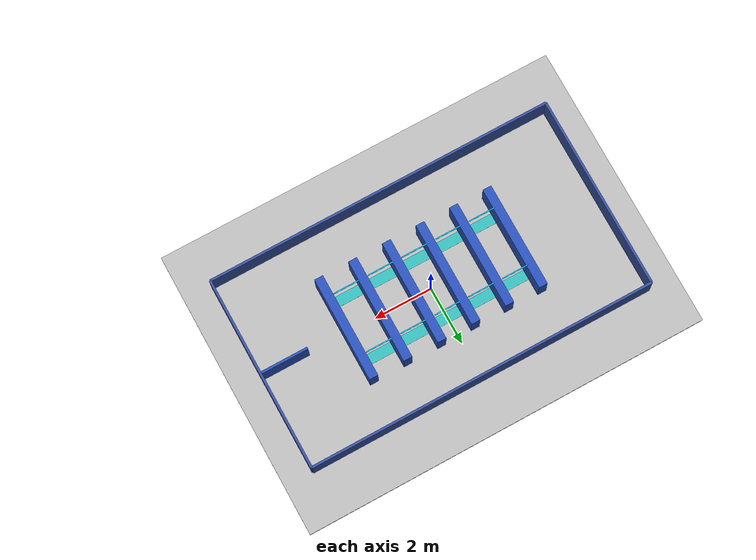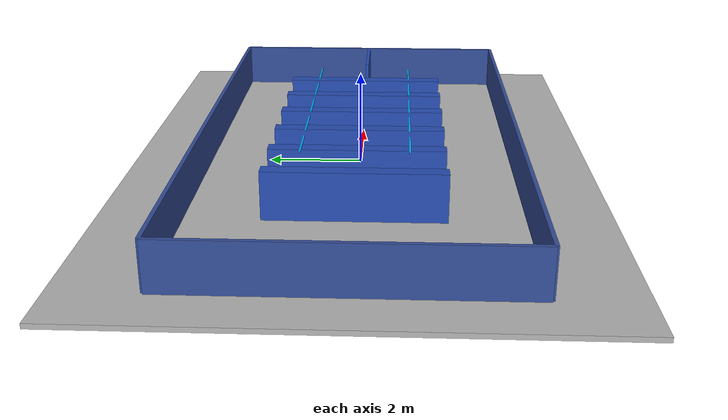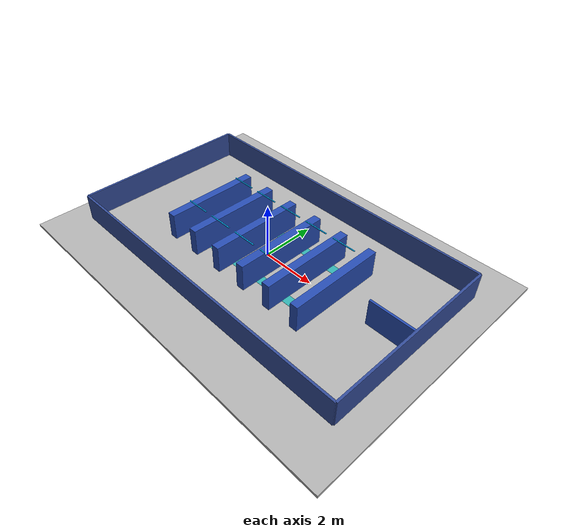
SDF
<?xml version='1.0' encoding='utf-8'?>
<sdf version="1.6"><world name="default"><physics name="default_physics" type="ode"><max_step_size>0.002</max_step_size><real_time_update_rate>500</real_time_update_rate><ode><solver><type>quick</type><iters>100</iters><sor>1.0</sor></solver></ode></physics><scene><shadows>false</shadows><ambient>.65 .65 .65 1</ambient></scene><light name="sun" type="directional"><pose>0 0 10 0 0 0</pose><diffuse>.8 .8 .8 1</diffuse><direction>-.3 -.2 -1</direction><cast_shadows>false</cast_shadows></light><model name="floor"><static>true</static><pose>0 0 -0.05 0 0 0</pose><link name="body"><visual name="visual"><geometry><box><size>14 10 0.1</size></box></geometry><material><ambient>.7 .7 .7 1</ambient><diffuse>.7 .7 .7 1</diffuse></material><cast_shadows>false</cast_shadows></visual><collision name="collision"><geometry><box><size>14 10 0.1</size></box></geometry></collision></link></model><model name="channel_wall_0"><static>true</static><pose>-3 0 0.5 0 0 0</pose><link name="body"><visual name="visual"><geometry><box><size>0.3 3.6 1</size></box></geometry><material><ambient>.15 .3 .7 1</ambient><diffuse>.15 .3 .7 1</diffuse></material><cast_shadows>false</cast_shadows></visual><collision name="collision"><geometry><box><size>0.3 3.6 1</size></box></geometry></collision></link></model><model name="channel_wall_1"><static>true</static><pose>-1.8 0 0.5 0 0 0</pose><link name="body"><visual name="visual"><geometry><box><size>0.3 3.6 1</size></box></geometry><material><ambient>.15 .3 .7 1</ambient><diffuse>.15 .3 .7 1</diffuse></material><cast_shadows>false</cast_shadows></visual><collision name="collision"><geometry><box><size>0.3 3.6 1</size></box></geometry></collision></link></model><model name="channel_wall_2"><static>true</static><pose>-0.6 0 0.5 0 0 0</pose><link name="body"><visual name="visual"><geometry><box><size>0.3 3.6 1</size></box></geometry><material><ambient>.15 .3 .7 1</ambient><diffuse>.15 .3 .7 1</diffuse></material><cast_shadows>false</cast_shadows></visual><collision name="collision"><geometry><box><size>0.3 3.6 1</size></box></geometry></collision></link></model><model name="channel_wall_3"><static>true</static><pose>0.6 0 0.5 0 0 0</pose><link name="body"><visual name="visual"><geometry><box><size>0.3 3.6 1</size></box></geometry><material><ambient>.15 .3 .7 1</ambient><diffuse>.15 .3 .7 1</diffuse></material><cast_shadows>false</cast_shadows></visual><collision name="collision"><geometry><box><size>0.3 3.6 1</size></box></geometry></collision></link></model><model name="channel_wall_4"><static>true</static><pose>1.8 0 0.5 0 0 0</pose><link name="body"><visual name="visual"><geometry><box><size>0.3 3.6 1</size></box></geometry><material><ambient>.15 .3 .7 1</ambient><diffuse>.15 .3 .7 1</diffuse></material><cast_shadows>false</cast_shadows></visual><collision name="collision"><geometry><box><size>0.3 3.6 1</size></box></geometry></collision></link></model><model name="channel_wall_5"><static>true</static><pose>3 0 0.5 0 0 0</pose><link name="body"><visual name="visual"><geometry><box><size>0.3 3.6 1</size></box></geometry><material><ambient>.15 .3 .7 1</ambient><diffuse>.15 .3 .7 1</diffuse></material><cast_shadows>false</cast_shadows></visual><collision name="collision"><geometry><box><size>0.3 3.6 1</size></box></geometry></collision></link></model><model name="outer_x_-1"><static>true</static><pose>-6 0 0.5 0 0 0</pose><link name="body"><visual name="visual"><geometry><box><size>0.08 6.68 1</size></box></geometry><material><ambient>.2 .3 .6 1</ambient><diffuse>.2 .3 .6 1</diffuse></material><cast_shadows>false</cast_shadows></visual><collision name="collision"><geometry><box><size>0.08 6.68 1</size></box></geometry></collision></link></model><model name="outer_y_-1"><static>true</static><pose>0 -3.34 0.5 0 0 0</pose><link name="body"><visual name="visual"><geometry><box><size>12 0.08 1</size></box></geometry><material><ambient>.2 .3 .6 1</ambient><diffuse>.2 .3 .6 1</diffuse></material><cast_shadows>false</cast_shadows></visual><collision name="collision"><geometry><box><size>12 0.08 1</size></box></geometry></collision></link></model><model name="outer_x_1"><static>true</static><pose>6 0 0.5 0 0 0</pose><link name="body"><visual name="visual"><geometry><box><size>0.08 6.68 1</size></box></geometry><material><ambient>.2 .3 .6 1</ambient><diffuse>.2 .3 .6 1</diffuse></material><cast_shadows>false</cast_shadows></visual><collision name="collision"><geometry><box><size>0.08 6.68 1</size></box></geometry></collision></link></model><model name="outer_y_1"><static>true</static><pose>0 3.34 0.5 0 0 0</pose><link name="body"><visual name="visual"><geometry><box><size>12 0.08 1</size></box></geometry><material><ambient>.2 .3 .6 1</ambient><diffuse>.2 .3 .6 1</diffuse></material><cast_shadows>false</cast_shadows></visual><collision name="collision"><geometry><box><size>12 0.08 1</size></box></geometry></collision></link></model><model name="entrance_exit_divider"><static>true</static><pose>5.175 0 0.5 0 0 0</pose><link name="body"><visual name="visual"><geometry><box><size>1.65 0.08 1</size></box></geometry><material><ambient>.15 .3 .7 1</ambient><diffuse>.15 .3 .7 1</diffuse></material><cast_shadows>false</cast_shadows></visual><collision name="collision"><geometry><box><size>1.65 0.08 1</size></box></geometry></collision></link></model><model name="inspection_2"><static>true</static><pose>-2.4 -1.05 0.003 0 0 0</pose><link name="body"><visual name="visual"><geometry><box><size>0.9 0.35 0.006</size></box></geometry><material><ambient>.2 .7 .7 1</ambient><diffuse>.2 .7 .7 1</diffuse></material><cast_shadows>false</cast_shadows></visual></link></model><model name="overhead_visual_0_-1"><static>true</static><pose>-2.4 -1.05 1.3 0 0 0</pose><link name="body"><visual name="visual"><geometry><box><size>0.9 0.035 0.025</size></box></geometry><material><ambient>0 .7 1 1</ambient><diffuse>0 .7 1 1</diffuse></material><cast_shadows>false</cast_shadows></visual></link></model><model name="inspection_1"><static>true</static><pose>-2.4 1.05 0.003 0 0 0</pose><link name="body"><visual name="visual"><geometry><box><size>0.9 0.35 0.006</size></box></geometry><material><ambient>.2 .7 .7 1</ambient><diffuse>.2 .7 .7 1</diffuse></material><cast_shadows>false</cast_shadows></visual></link></model><model name="overhead_visual_0_1"><static>true</static><pose>-2.4 1.05 1.3 0 0 0</pose><link name="body"><visual name="visual"><geometry><box><size>0.9 0.035 0.025</size></box></geometry><material><ambient>0 .7 1 1</ambient><diffuse>0 .7 1 1</diffuse></material><cast_shadows>false</cast_shadows></visual></link></model><model name="inspection_4"><static>true</static><pose>-1.2 -1.05 0.003 0 0 0</pose><link name="body"><visual name="visual"><geometry><box><size>0.9 0.35 0.006</size></box></geometry><material><ambient>.2 .7 .7 1</ambient><diffuse>.2 .7 .7 1</diffuse></material><cast_shadows>false</cast_shadows></visual></link></model><model name="overhead_visual_1_-1"><static>true</static><pose>-1.2 -1.05 1.3 0 0 0</pose><link name="body"><visual name="visual"><geometry><box><size>0.9 0.035 0.025</size></box></geometry><material><ambient>0 .7 1 1</ambient><diffuse>0 .7 1 1</diffuse></material><cast_shadows>false</cast_shadows></visual></link></model><model name="inspection_3"><static>true</static><pose>-1.2 1.05 0.003 0 0 0</pose><link name="body"><visual name="visual"><geometry><box><size>0.9 0.35 0.006</size></box></geometry><material><ambient>.2 .7 .7 1</ambient><diffuse>.2 .7 .7 1</diffuse></material><cast_shadows>false</cast_shadows></visual></link></model><model name="overhead_visual_1_1"><static>true</static><pose>-1.2 1.05 1.3 0 0 0</pose><link name="body"><visual name="visual"><geometry><box><size>0.9 0.035 0.025</size></box></geometry><material><ambient>0 .7 1 1</ambient><diffuse>0 .7 1 1</diffuse></material><cast_shadows>false</cast_shadows></visual></link></model><model name="inspection_6"><static>true</static><pose>0 -1.05 0.003 0 0 0</pose><link name="body"><visual name="visual"><geometry><box><size>0.9 0.35 0.006</size></box></geometry><material><ambient>.2 .7 .7 1</ambient><diffuse>.2 .7 .7 1</diffuse></material><cast_shadows>false</cast_shadows></visual></link></model><model name="overhead_visual_2_-1"><static>true</static><pose>0 -1.05 1.3 0 0 0</pose><link name="body"><visual name="visual"><geometry><box><size>0.9 0.035 0.025</size></box></geometry><material><ambient>0 .7 1 1</ambient><diffuse>0 .7 1 1</diffuse></material><cast_shadows>false</cast_shadows></visual></link></model><model name="inspection_5"><static>true</static><pose>0 1.05 0.003 0 0 0</pose><link name="body"><visual name="visual"><geometry><box><size>0.9 0.35 0.006</size></box></geometry><material><ambient>.2 .7 .7 1</ambient><diffuse>.2 .7 .7 1</diffuse></material><cast_shadows>false</cast_shadows></visual></link></model><model name="overhead_visual_2_1"><static>true</static><pose>0 1.05 1.3 0 0 0</pose><link name="body"><visual name="visual"><geometry><box><size>0.9 0.035 0.025</size></box></geometry><material><ambient>0 .7 1 1</ambient><diffuse>0 .7 1 1</diffuse></material><cast_shadows>false</cast_shadows></visual></link></model><model name="inspection_8"><static>true</static><pose>1.2 -1.05 0.003 0 0 0</pose><link name="body"><visual name="visual"><geometry><box><size>0.9 0.35 0.006</size></box></geometry><material><ambient>.2 .7 .7 1</ambient><diffuse>.2 .7 .7 1</diffuse></material><cast_shadows>false</cast_shadows></visual></link></model><model name="overhead_visual_3_-1"><static>true</static><pose>1.2 -1.05 1.3 0 0 0</pose><link name="body"><visual name="visual"><geometry><box><size>0.9 0.035 0.025</size></box></geometry><material><ambient>0 .7 1 1</ambient><diffuse>0 .7 1 1</diffuse></material><cast_shadows>false</cast_shadows></visual></link></model><model name="inspection_7"><static>true</static><pose>1.2 1.05 0.003 0 0 0</pose><link name="body"><visual name="visual"><geometry><box><size>0.9 0.35 0.006</size></box></geometry><material><ambient>.2 .7 .7 1</ambient><diffuse>.2 .7 .7 1</diffuse></material><cast_shadows>false</cast_shadows></visual></link></model><model name="overhead_visual_3_1"><static>true</static><pose>1.2 1.05 1.3 0 0 0</pose><link name="body"><visual name="visual"><geometry><box><size>0.9 0.035 0.025</size></box></geometry><material><ambient>0 .7 1 1</ambient><diffuse>0 .7 1 1</diffuse></material><cast_shadows>false</cast_shadows></visual></link></model><model name="inspection_10"><static>true</static><pose>2.4 -1.05 0.003 0 0 0</pose><link name="body"><visual name="visual"><geometry><box><size>0.9 0.35 0.006</size></box></geometry><material><ambient>.2 .7 .7 1</ambient><diffuse>.2 .7 .7 1</diffuse></material><cast_shadows>false</cast_shadows></visual></link></model><model name="overhead_visual_4_-1"><static>true</static><pose>2.4 -1.05 1.3 0 0 0</pose><link name="body"><visual name="visual"><geometry><box><size>0.9 0.035 0.025</size></box></geometry><material><ambient>0 .7 1 1</ambient><diffuse>0 .7 1 1</diffuse></material><cast_shadows>false</cast_shadows></visual></link></model><model name="inspection_9"><static>true</static><pose>2.4 1.05 0.003 0 0 0</pose><link name="body"><visual name="visual"><geometry><box><size>0.9 0.35 0.006</size></box></geometry><material><ambient>.2 .7 .7 1</ambient><diffuse>.2 .7 .7 1</diffuse></material><cast_shadows>false</cast_shadows></visual></link></model><model name="overhead_visual_4_1"><static>true</static><pose>2.4 1.05 1.3 0 0 0</pose><link name="body"><visual name="visual"><geometry><box><size>0.9 0.035 0.025</size></box></geometry><material><ambient>0 .7 1 1</ambient><diffuse>0 .7 1 1</diffuse></material><cast_shadows>false</cast_shadows></visual></link></model><gui><camera name="user_camera"><pose>8 -10 11 0 0.68 2.2</pose></camera></gui></world></sdf>
